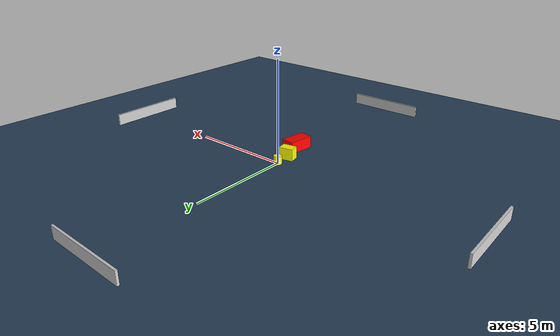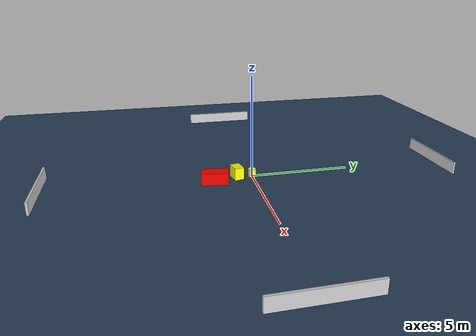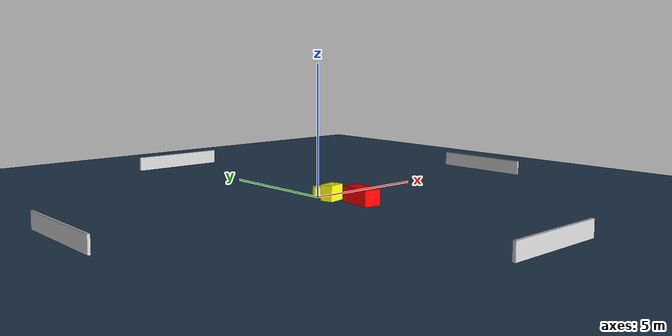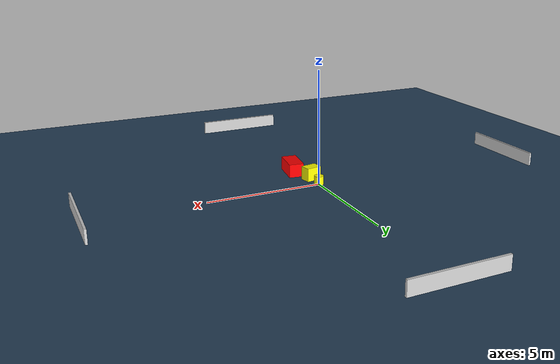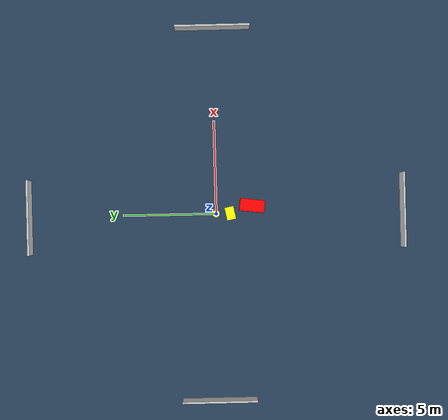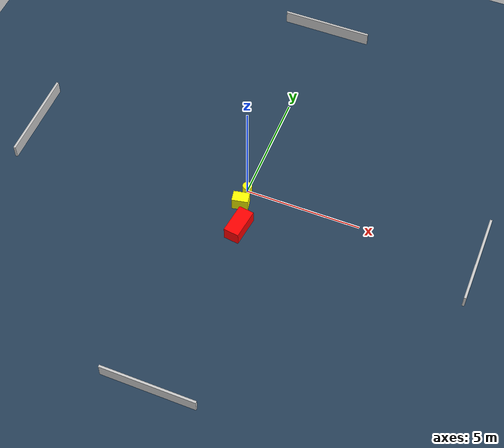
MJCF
<?xml version="1.0" ?>
<mujoco model="generated_environment">
  <option timestep="0.01" integrator="RK4" cone="elliptic"/>
  <default>
    <geom density="1"/>
  </default>
  <asset>
    <texture builtin="gradient" height="3072" name="skybox" rgb1="0.3 0.5 0.7" rgb2="0 0 0" type="skybox" width="512"/>
    <texture builtin="checker" height="300" name="groundplane" rgb1="0.2 0.3 0.4" rgb2="0.1 0.2 0.3" type="2d" width="300"/>
    <material name="groundplane" reflectance="0.2" texrepeat="5 5" texture="groundplane"/>
  </asset>
  <worldbody>
    <light dir="0 0 -1" directional="true" pos="0 0 1.5"/>
    <geom condim="3" friction="0.5 0.005 0.001" material="groundplane" name="floor" pos="0 0 0" size="0 0 0.05" type="plane"/>
    <body name="walls">
      <geom name="wall_1" condim="4" pos="-10.0 0.0 0.3" rgba="0.800000011920929 0.800000011920929 0.800000011920929 1.0" size="0.05 2.0 0.3" type="box"/>
      <geom name="wall_2" condim="4" pos="10.0 0.0 0.3" rgba="0.800000011920929 0.800000011920929 0.800000011920929 1.0" size="0.05 2.0 0.3" type="box"/>
      <geom name="wall_3" condim="4" pos="0.0 -10.0 0.3" rgba="0.800000011920929 0.800000011920929 0.800000011920929 1.0" size="2.0 0.05 0.3" type="box"/>
      <geom name="wall_4" condim="4" pos="0.0 10.0 0.3" rgba="0.800000011920929 0.800000011920929 0.800000011920929 1.0" size="2.0 0.05 0.3" type="box"/>
    </body>
    <body name="robot">
      <joint name="joint_x" type="slide" pos="0 0 0" axis="1 0 0"/>
      <joint name="joint_y" type="slide" pos="0 0 0" axis="0 1 0"/>
      <geom name="robot" type="cylinder" pos="0.0 0.0 0.2" size="0.2 0.2 0.0" mass="5.0" friction="1.0 0.005 0.0001" condim="4" rgba="1.0 1.0 0.0 1.0"/>
    </body>
    <body name="obstacle_1_movable">
      <geom name="obstacle_1_movable" condim="4" pos="0.005372709456093667 -0.7548835147534809 0.3" euler="0 0 101.44950702626056" friction="0.0 0.005 0.001" rgba="1.0 1.0 0.0 1.0" size="0.23984224707508112 0.3461970187815553 0.3" type="box" mass="0.1"/>
      <joint type="free"/>
    </body>
    <body name="obstacle_2_static">
      <geom name="obstacle_2_static" condim="4" pos="0.391793271186319 -1.921391706551408 0.3" euler="0 0 172.6629274413742" friction="0.0 0.005 0.001" rgba="1.0 0.0 0.0 1.0" size="0.32949180166791525 0.6530970157847109 0.3" type="box"/>
    </body>
  </worldbody>
  <actuator>
    <motor name="actuator_x" joint="joint_x" gear="1" ctrlrange="-1 1"/>
    <motor name="actuator_y" joint="joint_y" gear="1" ctrlrange="-1 1"/>
  </actuator>
</mujoco>
